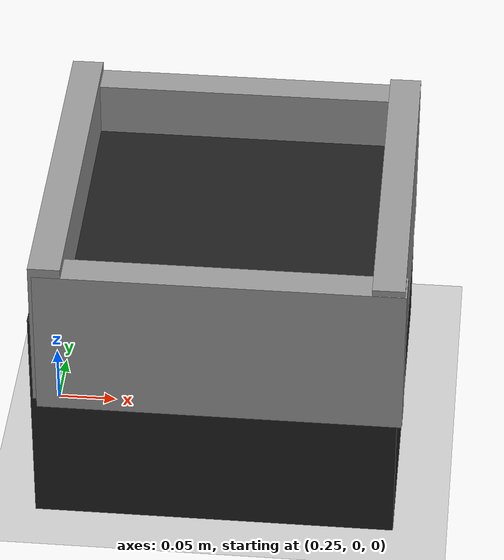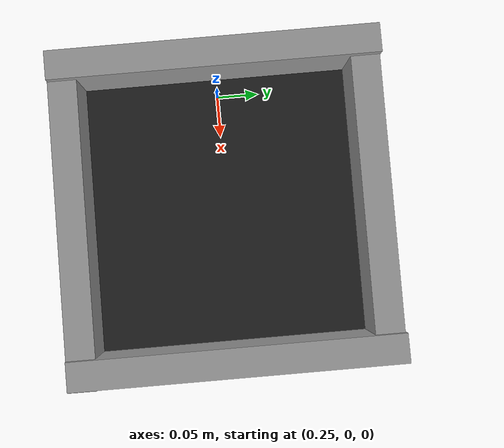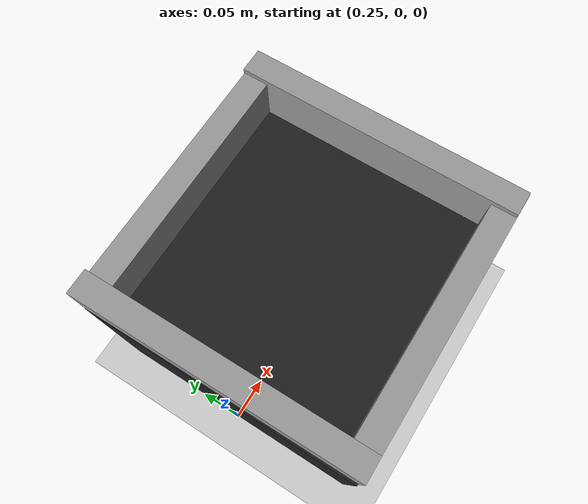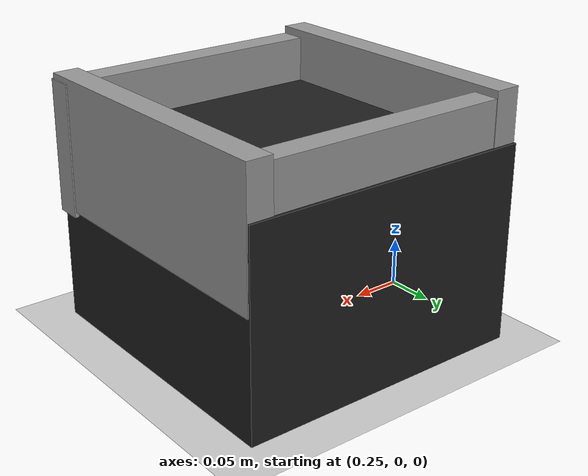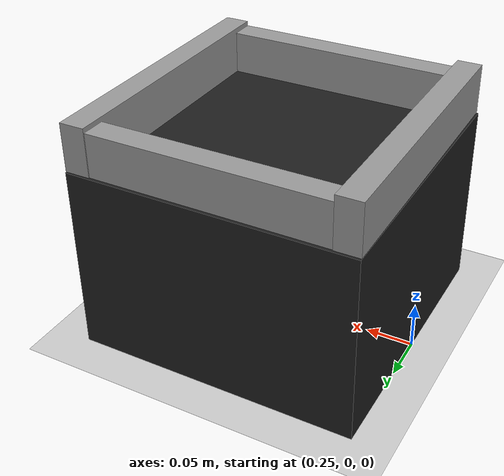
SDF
<sdf version="1.4">
 <world name="empty">
  <include><uri>model://sun</uri></include>
  <include><uri>model://ground_plane</uri></include>
  <physics type="ode">
   <max_step_size>0.001</max_step_size>
   <real_time_factor>1</real_time_factor>
   <real_time_update_rate>1000</real_time_update_rate>
   <gravity>0 0 -9.81</gravity>
  </physics>
  <model name="table_box_model">
   <static>true</static>
   <pose>0.40 0.0 0.1 0 -0 1.5707963265</pose>
   <link name="table_box_link">
    <inertial>
     <mass>1</mass>
     <inertia>
      <ixx>0.166667</ixx>
      <ixy>0</ixy>
      <ixz>0</ixz>
      <iyy>0.166667</iyy>
      <iyz>0</iyz>
      <izz>0.166667</izz>
     </inertia>
    </inertial>
    <collision name="collision">
     <geometry><box><size>0.30 0.30 0.2</size></box></geometry>
     <surface><friction><ode><mu>0.6</mu><mu2>0.6</mu2></ode></friction></surface>
    </collision>
    <visual name="visual">
     <geometry><box><size>0.30 0.30 0.2</size></box></geometry>
     <material>
      <script><name>Gazebo/Black</name><uri>file://media/materials/scripts/gazebo.material</uri></script>
     </material>
    </visual>
   </link>
  </model>
  <model name="bbox">
   <link name="link">
    <inertial>
     <mass>0.00104021</mass>
     <inertia>
      <ixx>1.57995e-06</ixx>
      <ixy>0</ixy>
      <ixz>0</ixz>
      <iyy>9.26966e-06</iyy>
      <iyz>0</iyz>
      <izz>7.80938e-06</izz>
     </inertia>
    </inertial>
    <pose>0.404637 -0.138773 0.17942 -0 -0 -0</pose>
    <visual name="visual">
     <geometry><box><size>0.298998 0.026273 0.132424</size></box></geometry>
     <material>
      <script><name>Gazebo/Grey</name><uri>file://media/materials/scripts/gazebo.material</uri></script>
      <emissive>0 0 0 1</emissive>
     </material>
    </visual>
    <collision name="collision">
     <geometry><box><size>0.298998 0.026273 0.132424</size></box></geometry>
     <surface>
      <friction>
       <ode><mu>1</mu><mu2>1</mu2><fdir1>0 0 0</fdir1><slip1>0</slip1><slip2>0</slip2></ode>
       <torsional>
        <coefficient>1</coefficient>
        <patch_radius>0</patch_radius>
        <surface_radius>0</surface_radius>
        <use_patch_radius>1</use_patch_radius>
        <ode><slip>0</slip></ode>
       </torsional>
      </friction>
      <bounce><restitution_coefficient>0</restitution_coefficient><threshold>1e+06</threshold></bounce>
      <contact>
       <collide_without_contact>0</collide_without_contact>
       <collide_without_contact_bitmask>1</collide_without_contact_bitmask>
       <collide_bitmask>1</collide_bitmask>
       <ode>
        <soft_cfm>0</soft_cfm>
        <soft_erp>0.2</soft_erp>
        <kp>1e+13</kp>
        <kd>1</kd>
        <max_vel>0.01</max_vel>
        <min_depth>0</min_depth>
       </ode>
       <bullet>
        <split_impulse>1</split_impulse>
        <split_impulse_penetration_threshold>-0.01</split_impulse_penetration_threshold>
        <soft_cfm>0</soft_cfm>
        <soft_erp>0.2</soft_erp>
        <kp>1e+13</kp>
        <kd>1</kd>
       </bullet>
      </contact>
     </surface>
    </collision>
   </link>
   <link name="link_clone">
    <inertial>
     <mass>0.00104021</mass>
     <inertia>
      <ixx>1.57995e-06</ixx>
      <ixy>0</ixy>
      <ixz>0</ixz>
      <iyy>9.26966e-06</iyy>
      <iyz>0</iyz>
      <izz>7.80938e-06</izz>
     </inertia>
    </inertial>
    <pose>0.400076 0.13368 0.17981 -1e-05 -0 -0.000119</pose>
    <visual name="visual">
     <geometry><box><size>0.298998 0.026273 0.132424</size></box></geometry>
     <material>
      <script><name>Gazebo/Grey</name><uri>file://media/materials/scripts/gazebo.material</uri></script>
      <shader type="pixel"/>
      <emissive>0 0 0 1</emissive>
     </material>
    </visual>
    <collision name="collision">
     <geometry><box><size>0.298998 0.026273 0.132424</size></box></geometry>
     <surface>
      <friction>
       <ode><mu>1</mu><mu2>1</mu2><fdir1>0 0 0</fdir1><slip1>0</slip1><slip2>0</slip2></ode>
       <torsional>
        <coefficient>1</coefficient>
        <patch_radius>0</patch_radius>
        <surface_radius>0</surface_radius>
        <use_patch_radius>1</use_patch_radius>
        <ode><slip>0</slip></ode>
       </torsional>
      </friction>
      <bounce><restitution_coefficient>0</restitution_coefficient><threshold>1e+06</threshold></bounce>
      <contact>
       <collide_without_contact>0</collide_without_contact>
       <collide_without_contact_bitmask>1</collide_without_contact_bitmask>
       <collide_bitmask>1</collide_bitmask>
       <ode>
        <soft_cfm>0</soft_cfm>
        <soft_erp>0.2</soft_erp>
        <kp>1e+13</kp>
        <kd>1</kd>
        <max_vel>0.01</max_vel>
        <min_depth>0</min_depth>
       </ode>
       <bullet>
        <split_impulse>1</split_impulse>
        <split_impulse_penetration_threshold>-0.01</split_impulse_penetration_threshold>
        <soft_cfm>0</soft_cfm>
        <soft_erp>0.2</soft_erp>
        <kp>1e+13</kp>
        <kd>1</kd>
       </bullet>
      </contact>
     </surface>
    </collision>
   </link>
   <link name="link_clone_0">
    <inertial>
     <mass>0.00104021</mass>
     <inertia>
      <ixx>1.57995e-06</ixx>
      <ixy>0</ixy>
      <ixz>0</ixz>
      <iyy>9.26966e-06</iyy>
      <iyz>0</iyz>
      <izz>7.80938e-06</izz>
     </inertia>
    </inertial>
    <pose>0.538712 -0.001579 0.1848 0 -1e-05 -1.56405</pose>
    <visual name="visual">
     <geometry><box><size>0.298998 0.026273 0.132424</size></box></geometry>
     <material>
      <script><name>Gazebo/Grey</name><uri>file://media/materials/scripts/gazebo.material</uri></script>
      <shader type="pixel"/>
      <emissive>0 0 0 1</emissive>
     </material>
    </visual>
    <collision name="collision">
     <geometry><box><size>0.298998 0.026273 0.132424</size></box></geometry>
     <surface>
      <friction>
       <ode><mu>1</mu><mu2>1</mu2><fdir1>0 0 0</fdir1><slip1>0</slip1><slip2>0</slip2></ode>
       <torsional>
        <coefficient>1</coefficient>
        <patch_radius>0</patch_radius>
        <surface_radius>0</surface_radius>
        <use_patch_radius>1</use_patch_radius>
        <ode><slip>0</slip></ode>
       </torsional>
      </friction>
      <bounce><restitution_coefficient>0</restitution_coefficient><threshold>1e+06</threshold></bounce>
      <contact>
       <collide_without_contact>0</collide_without_contact>
       <collide_without_contact_bitmask>1</collide_without_contact_bitmask>
       <collide_bitmask>1</collide_bitmask>
       <ode>
        <soft_cfm>0</soft_cfm>
        <soft_erp>0.2</soft_erp>
        <kp>1e+13</kp>
        <kd>1</kd>
        <max_vel>0.01</max_vel>
        <min_depth>0</min_depth>
       </ode>
       <bullet>
        <split_impulse>1</split_impulse>
        <split_impulse_penetration_threshold>-0.01</split_impulse_penetration_threshold>
        <soft_cfm>0</soft_cfm>
        <soft_erp>0.2</soft_erp>
        <kp>1e+13</kp>
        <kd>1</kd>
       </bullet>
      </contact>
     </surface>
    </collision>
   </link>
   <link name="link_clone_0_clone">
    <inertial>
     <mass>0.00104021</mass>
     <inertia>
      <ixx>1.57995e-06</ixx>
      <ixy>0</ixy>
      <ixz>0</ixz>
      <iyy>9.26966e-06</iyy>
      <iyz>0</iyz>
      <izz>7.80938e-06</izz>
     </inertia>
    </inertial>
    <pose>0.264375 -0.001947 0.18719 -0 -2e-05 -1.56415</pose>
    <visual name="visual">
     <geometry><box><size>0.298998 0.026273 0.132424</size></box></geometry>
     <material>
      <script><name>Gazebo/Grey</name><uri>file://media/materials/scripts/gazebo.material</uri></script>
      <shader type="pixel"/>
      <emissive>0 0 0 1</emissive>
     </material>
    </visual>
    <collision name="collision">
     <geometry><box><size>0.298998 0.026273 0.132424</size></box></geometry>
     <surface>
      <friction>
       <ode><mu>1</mu><mu2>1</mu2><fdir1>0 0 0</fdir1><slip1>0</slip1><slip2>0</slip2></ode>
       <torsional>
        <coefficient>1</coefficient>
        <patch_radius>0</patch_radius>
        <surface_radius>0</surface_radius>
        <use_patch_radius>1</use_patch_radius>
        <ode><slip>0</slip></ode>
       </torsional>
      </friction>
      <bounce><restitution_coefficient>0</restitution_coefficient><threshold>1e+06</threshold></bounce>
      <contact>
       <collide_without_contact>0</collide_without_contact>
       <collide_without_contact_bitmask>1</collide_without_contact_bitmask>
       <collide_bitmask>1</collide_bitmask>
       <ode>
        <soft_cfm>0</soft_cfm>
        <soft_erp>0.2</soft_erp>
        <kp>1e+13</kp>
        <kd>1</kd>
        <max_vel>0.01</max_vel>
        <min_depth>0</min_depth>
       </ode>
       <bullet>
        <split_impulse>1</split_impulse>
        <split_impulse_penetration_threshold>-0.01</split_impulse_penetration_threshold>
        <soft_cfm>0</soft_cfm>
        <soft_erp>0.2</soft_erp>
        <kp>1e+13</kp>
        <kd>1</kd>
       </bullet>
      </contact>
     </surface>
    </collision>
   </link>
   <joint name="link_JOINT_7" type="fixed">
    <parent>link</parent>
    <child>link_clone_0</child>
    <physics>
     <ode><limit><cfm>0</cfm><erp>0.2</erp></limit><suspension><cfm>0</cfm><erp>0.2</erp></suspension></ode>
    </physics>
   </joint>
   <joint name="link_clone_0_JOINT_8" type="fixed">
    <parent>link_clone_0</parent>
    <child>link_clone</child>
    <physics>
     <ode><limit><cfm>0</cfm><erp>0.2</erp></limit><suspension><cfm>0</cfm><erp>0.2</erp></suspension></ode>
    </physics>
   </joint>
   <joint name="link_clone_0_clone_JOINT_6" type="fixed">
    <parent>link_clone_0_clone</parent>
    <child>link</child>
    <physics>
     <ode><limit><cfm>0</cfm><erp>0.2</erp></limit><suspension><cfm>0</cfm><erp>0.2</erp></suspension></ode>
    </physics>
   </joint>
   <joint name="link_clone_JOINT_9" type="fixed">
    <parent>link_clone</parent>
    <child>link_clone_0_clone</child>
    <physics>
     <ode><limit><cfm>0</cfm><erp>0.2</erp></limit><suspension><cfm>0</cfm><erp>0.2</erp></suspension></ode>
    </physics>
   </joint>
   <static>1</static>
  </model>
 </world>
</sdf>
